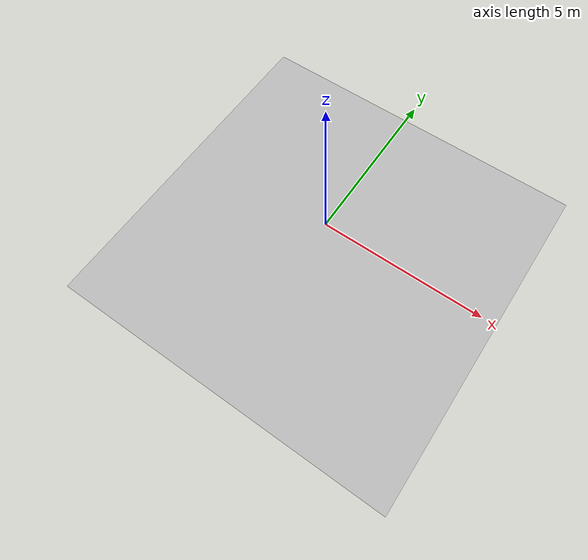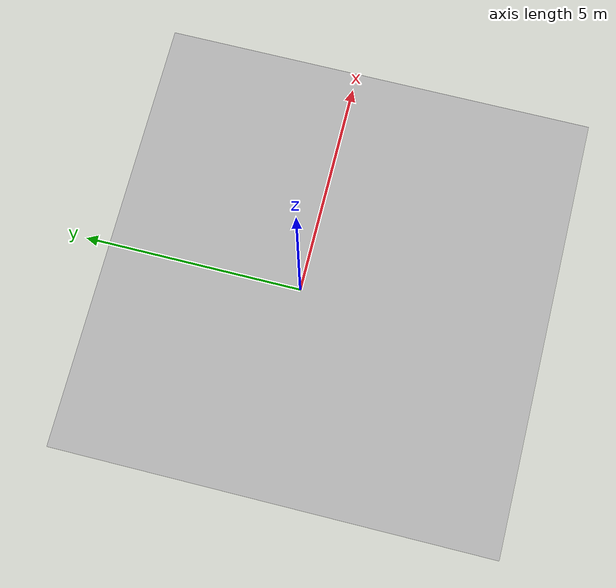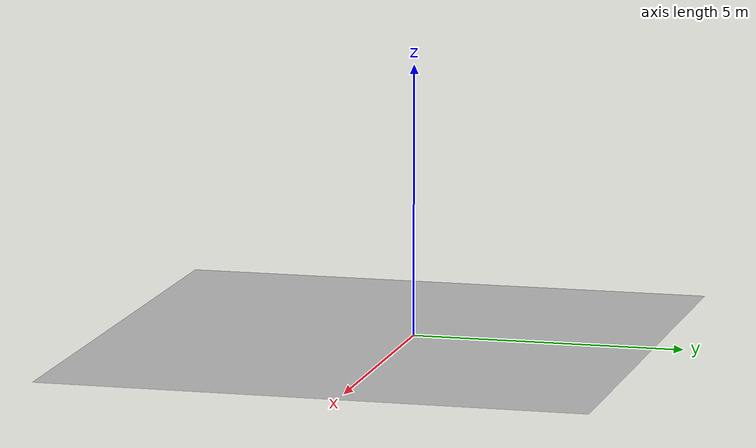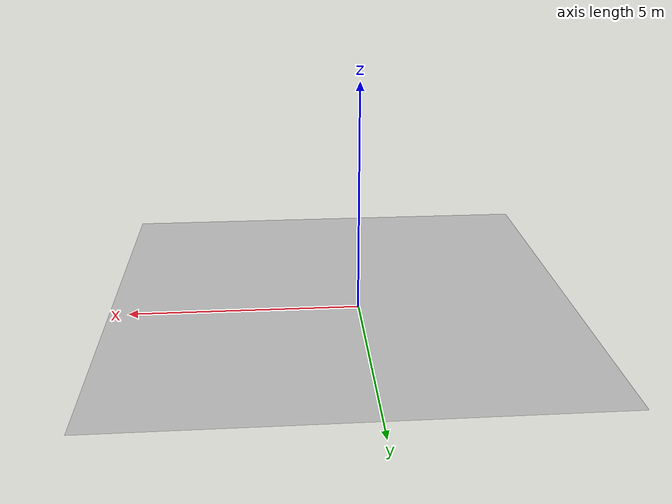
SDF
<?xml version="1.0"?>
<sdf version="1.6">
  <model name="track2">
    <static>true</static>
    <link name="track2_link">
      <visual name="track2_visual">
        <cast_shadows>false</cast_shadows>
        <geometry>
          <mesh>
            <uri>model://track2/meshes/Track2.dae</uri>
          </mesh>
        </geometry>
      </visual>
      <collision name="track2_collision">
        <geometry>
          <mesh>
            <uri>model://track2/meshes/Track2.dae</uri>
          </mesh>
        </geometry>
      </collision>
    </link>
  </model>
</sdf>
